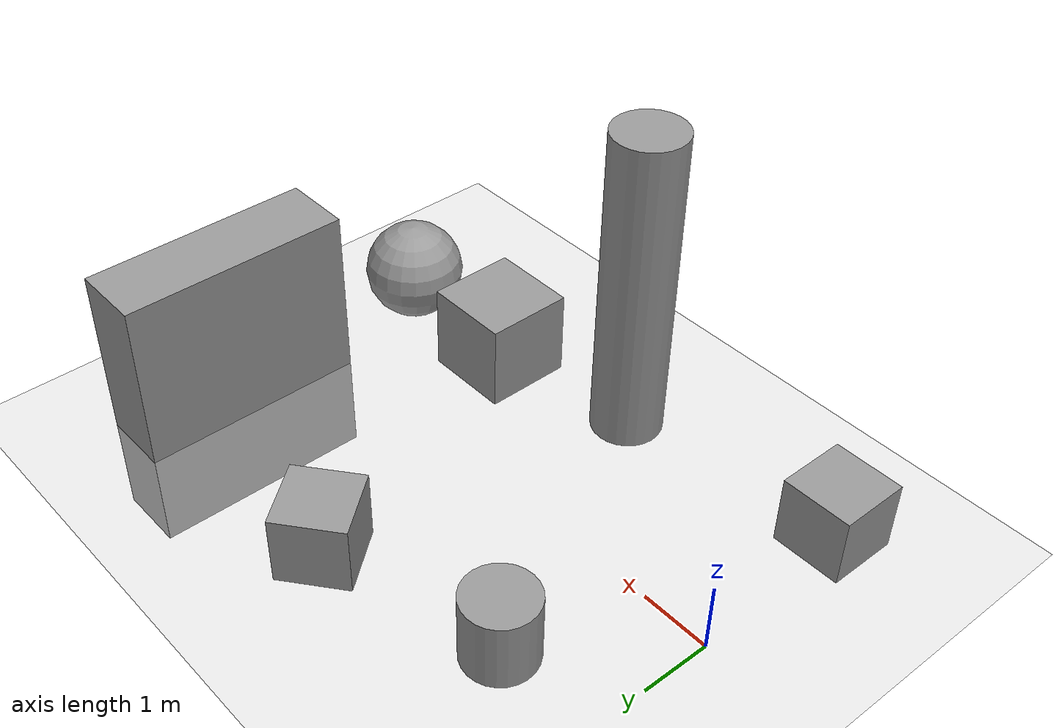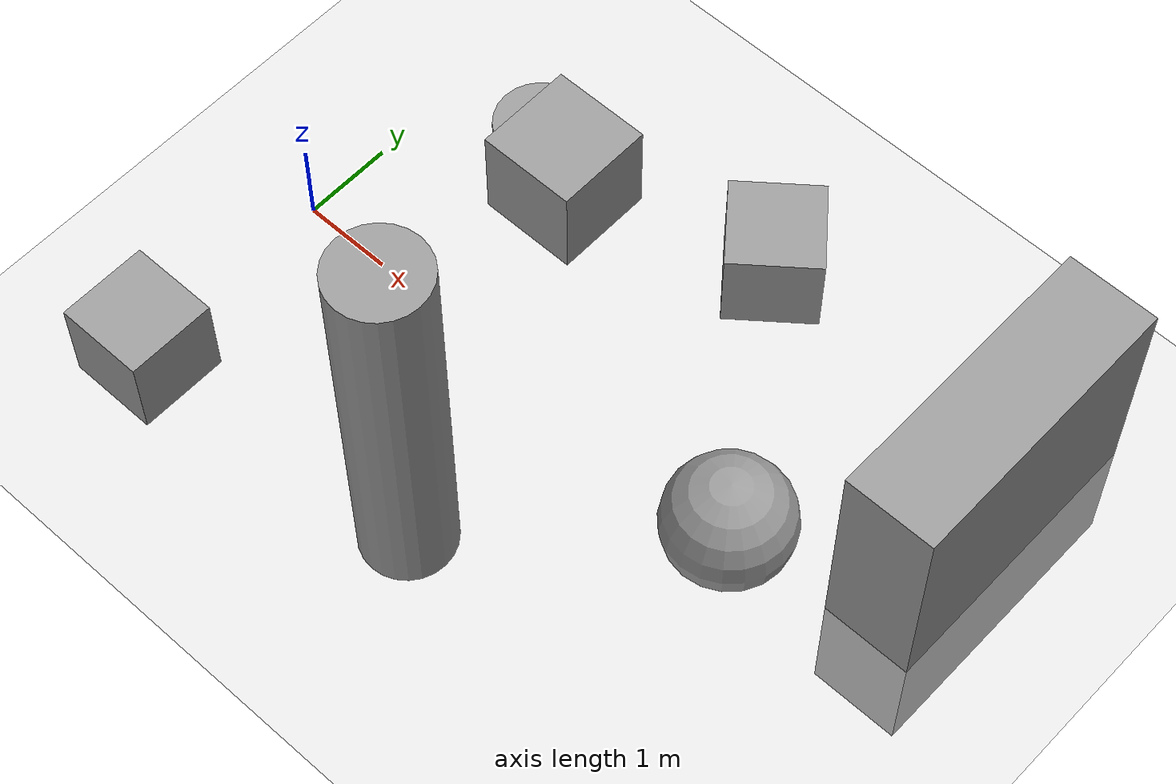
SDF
<sdf version="1.6">
 <world name="default">
  <model name="ground_plane">
   <static>1</static>
   <link name="link">
    <collision name="collision">
     <geometry><plane><normal>0 0 1</normal><size>100 100</size></plane></geometry>
     <surface><friction><ode><mu>100</mu><mu2>50</mu2></ode></friction></surface>
    </collision>
    <visual name="visual">
     <cast_shadows>0</cast_shadows>
     <geometry><plane><normal>0 0 1</normal><size>100 100</size></plane></geometry>
     <material>
      <script><uri>file://media/materials/scripts/gazebo.material</uri><name>Gazebo/Grey</name></script>
     </material>
    </visual>
   </link>
  </model>
  <light name="sun" type="directional">
   <pose>0 0 10 0 -0 0</pose>
   <diffuse>0.8 0.8 0.8 1</diffuse>
   <specular>0.2 0.2 0.2 1</specular>
   <attenuation>
    <range>1000</range>
    <constant>0.9</constant>
    <linear>0.01</linear>
    <quadratic>0.001</quadratic>
   </attenuation>
   <direction>-0.5 0.1 -0.9</direction>
  </light>
  <gravity>0 0 -9.8</gravity>
  <magnetic_field>6e-06 2.3e-05 -4.2e-05</magnetic_field>
  <atmosphere type="adiabatic"/>
  <physics name="default_physics" default="0" type="ode">
   <max_step_size>0.001</max_step_size>
   <real_time_factor>1</real_time_factor>
   <real_time_update_rate>1000</real_time_update_rate>
  </physics>
  <scene><ambient>0.4 0.4 0.4 1</ambient><background>0.7 0.7 0.7 1</background><shadows>1</shadows></scene>
  <spherical_coordinates>
   <surface_model>EARTH_WGS84</surface_model>
   <latitude_deg>0</latitude_deg>
   <longitude_deg>0</longitude_deg>
   <elevation>0</elevation>
   <heading_deg>0</heading_deg>
  </spherical_coordinates>
  <model name="unit_cylinder">
   <static>1</static>
   <pose>1.47402 1.89613 0.5 0 -0 0</pose>
   <link name="link">
    <inertial>
     <mass>1</mass>
     <inertia><ixx>0.145833</ixx><ixy>0</ixy><ixz>0</ixz><iyy>0.145833</iyy><iyz>0</iyz><izz>0.125</izz></inertia>
    </inertial>
    <collision name="collision">
     <geometry><cylinder><radius>0.5</radius><length>1</length></cylinder></geometry>
    </collision>
    <visual name="visual">
     <geometry><cylinder><radius>0.5</radius><length>1</length></cylinder></geometry>
     <material>
      <script><name>Gazebo/Grey</name><uri>file://media/materials/scripts/gazebo.material</uri></script>
     </material>
    </visual>
   </link>
  </model>
  <model name="unit_box">
   <static>1</static>
   <pose>0.143671 -2.42399 0.499995 0 1e-05 0</pose>
   <link name="link">
    <inertial>
     <mass>1</mass>
     <inertia>
      <ixx>0.166667</ixx>
      <ixy>0</ixy>
      <ixz>0</ixz>
      <iyy>0.166667</iyy>
      <iyz>0</iyz>
      <izz>0.166667</izz>
     </inertia>
    </inertial>
    <collision name="collision"><geometry><box><size>1 1 1</size></box></geometry></collision>
    <visual name="visual">
     <geometry><box><size>1 1 1</size></box></geometry>
     <material>
      <script><name>Gazebo/Grey</name><uri>file://media/materials/scripts/gazebo.material</uri></script>
     </material>
    </visual>
   </link>
  </model>
  <model name="unit_cylinder_0">
   <static>1</static>
   <pose>3.401 -2.04277 2.27753 -0 -0 -6.1e-05</pose>
   <link name="link">
    <inertial>
     <mass>1</mass>
     <inertia><ixx>0.145833</ixx><ixy>0</ixy><ixz>0</ixz><iyy>0.145833</iyy><iyz>0</iyz><izz>0.125</izz></inertia>
    </inertial>
    <collision name="collision">
     <geometry><cylinder><radius>0.5</radius><length>4.55506</length></cylinder></geometry>
    </collision>
    <visual name="visual">
     <geometry><cylinder><radius>0.5</radius><length>4.55506</length></cylinder></geometry>
     <material>
      <script><name>Gazebo/Grey</name><uri>file://media/materials/scripts/gazebo.material</uri></script>
     </material>
    </visual>
   </link>
  </model>
  <model name="unit_box_0">
   <static>1</static>
   <pose>3.09699 0.523966 3.09561 0 -0 0</pose>
   <link name="link">
    <inertial>
     <mass>1</mass>
     <inertia>
      <ixx>0.166667</ixx>
      <ixy>0</ixy>
      <ixz>0</ixz>
      <iyy>0.166667</iyy>
      <iyz>0</iyz>
      <izz>0.166667</izz>
     </inertia>
    </inertial>
    <collision name="collision"><geometry><box><size>1 1 1</size></box></geometry></collision>
    <visual name="visual">
     <geometry><box><size>1 1 1</size></box></geometry>
     <material>
      <script><name>Gazebo/Grey</name><uri>file://media/materials/scripts/gazebo.material</uri></script>
     </material>
    </visual>
   </link>
  </model>
  <model name="unit_sphere">
   <static>1</static>
   <pose>6.14247 -0.59137 1.7436 0 -0 0</pose>
   <link name="link">
    <inertial>
     <mass>1</mass>
     <inertia><ixx>0.1</ixx><ixy>0</ixy><ixz>0</ixz><iyy>0.1</iyy><iyz>0</iyz><izz>0.1</izz></inertia>
    </inertial>
    <collision name="collision"><geometry><sphere><radius>0.64923</radius></sphere></geometry></collision>
    <visual name="visual">
     <geometry><sphere><radius>0.64923</radius></sphere></geometry>
     <material>
      <script><name>Gazebo/Grey</name><uri>file://media/materials/scripts/gazebo.material</uri></script>
     </material>
    </visual>
   </link>
  </model>
  <model name="unit_box_1">
   <static>1</static>
   <pose>7.36084 1.69236 0.5 0 -0 0</pose>
   <link name="link">
    <inertial>
     <mass>1</mass>
     <inertia>
      <ixx>0.166667</ixx>
      <ixy>0</ixy>
      <ixz>0</ixz>
      <iyy>0.166667</iyy>
      <iyz>0</iyz>
      <izz>0.166667</izz>
     </inertia>
    </inertial>
    <collision name="collision"><geometry><box><size>1 3.21542 3.91532</size></box></geometry></collision>
    <visual name="visual">
     <geometry><box><size>1 3.21542 3.91532</size></box></geometry>
     <material>
      <script><name>Gazebo/Grey</name><uri>file://media/materials/scripts/gazebo.material</uri></script>
     </material>
    </visual>
   </link>
  </model>
  <model name="unit_box_2">
   <static>1</static>
   <pose>4.04811 2.55905 0.5 0 0 -0.893275</pose>
   <link name="link">
    <inertial>
     <mass>1</mass>
     <inertia>
      <ixx>0.166667</ixx>
      <ixy>0</ixy>
      <ixz>0</ixz>
      <iyy>0.166667</iyy>
      <iyz>0</iyz>
      <izz>0.166667</izz>
     </inertia>
    </inertial>
    <collision name="collision"><geometry><box><size>1 1 1</size></box></geometry></collision>
    <visual name="visual">
     <geometry><box><size>1 1 1</size></box></geometry>
     <material>
      <script><name>Gazebo/Grey</name><uri>file://media/materials/scripts/gazebo.material</uri></script>
     </material>
    </visual>
   </link>
  </model>
 </world>
</sdf>
